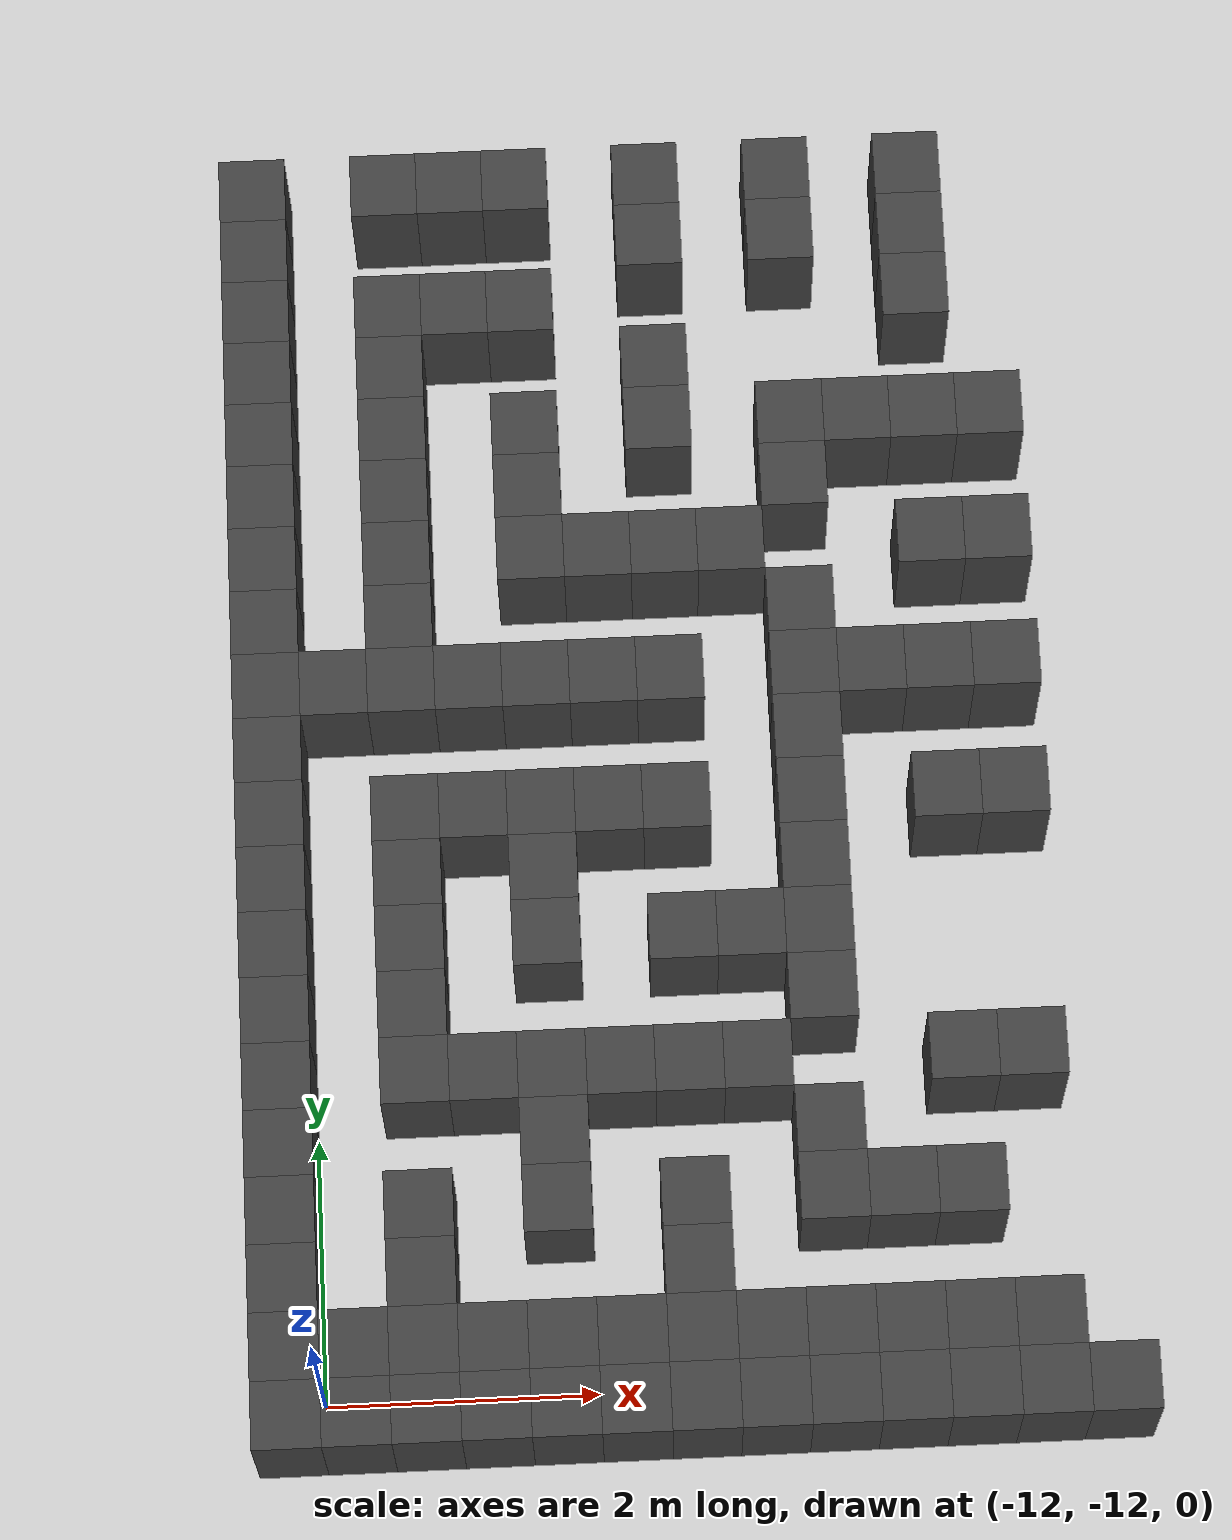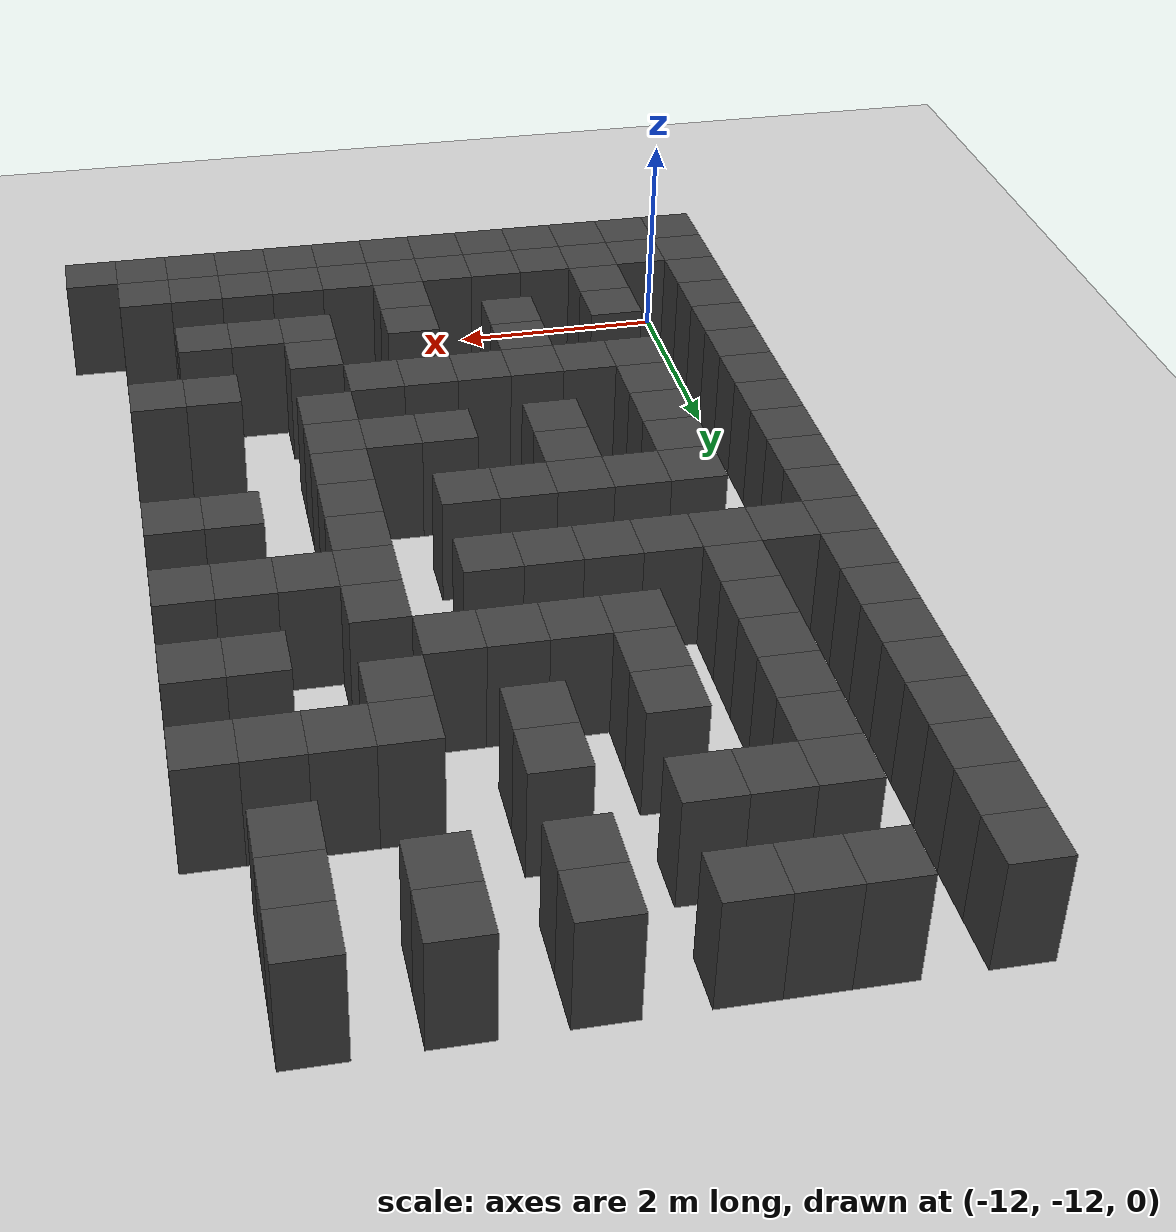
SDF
<sdf version="1.7">
 <world name="map_16603">
  <model name="ground_plane">
   <static>true</static>
   <link name="link">
    <collision name="collision">
     <geometry><plane><normal>0 0 1</normal><size>200 200</size></plane></geometry>
    </collision>
    <visual name="visual">
     <geometry><plane><normal>0 0 1</normal><size>200 200</size></plane></geometry>
     <material><ambient>0.8 0.8 0.8 1</ambient><diffuse>0.8 0.8 0.8 1</diffuse></material>
    </visual>
   </link>
  </model>
  <model name="maze_environment">
   <static>true</static>
   <link name="wall_730">
    <pose>-12.250 -2.750 0.500 0 0 0</pose>
    <collision name="col"><geometry><box><size>0.5 0.5 1.0</size></box></geometry></collision>
    <visual name="vis">
     <geometry><box><size>0.5 0.5 1.0</size></box></geometry>
     <material><ambient>0.15 0.15 0.15 1</ambient><diffuse>0.25 0.25 0.25 1</diffuse></material>
    </visual>
   </link>
   <link name="wall_731">
    <pose>-11.250 -2.750 0.500 0 0 0</pose>
    <collision name="col"><geometry><box><size>0.5 0.5 1.0</size></box></geometry></collision>
    <visual name="vis">
     <geometry><box><size>0.5 0.5 1.0</size></box></geometry>
     <material><ambient>0.15 0.15 0.15 1</ambient><diffuse>0.25 0.25 0.25 1</diffuse></material>
    </visual>
   </link>
   <link name="wall_732">
    <pose>-10.750 -2.750 0.500 0 0 0</pose>
    <collision name="col"><geometry><box><size>0.5 0.5 1.0</size></box></geometry></collision>
    <visual name="vis">
     <geometry><box><size>0.5 0.5 1.0</size></box></geometry>
     <material><ambient>0.15 0.15 0.15 1</ambient><diffuse>0.25 0.25 0.25 1</diffuse></material>
    </visual>
   </link>
   <link name="wall_733">
    <pose>-10.250 -2.750 0.500 0 0 0</pose>
    <collision name="col"><geometry><box><size>0.5 0.5 1.0</size></box></geometry></collision>
    <visual name="vis">
     <geometry><box><size>0.5 0.5 1.0</size></box></geometry>
     <material><ambient>0.15 0.15 0.15 1</ambient><diffuse>0.25 0.25 0.25 1</diffuse></material>
    </visual>
   </link>
   <link name="wall_734">
    <pose>-9.250 -2.750 0.500 0 0 0</pose>
    <collision name="col"><geometry><box><size>0.5 0.5 1.0</size></box></geometry></collision>
    <visual name="vis">
     <geometry><box><size>0.5 0.5 1.0</size></box></geometry>
     <material><ambient>0.15 0.15 0.15 1</ambient><diffuse>0.25 0.25 0.25 1</diffuse></material>
    </visual>
   </link>
   <link name="wall_735">
    <pose>-8.250 -2.750 0.500 0 0 0</pose>
    <collision name="col"><geometry><box><size>0.5 0.5 1.0</size></box></geometry></collision>
    <visual name="vis">
     <geometry><box><size>0.5 0.5 1.0</size></box></geometry>
     <material><ambient>0.15 0.15 0.15 1</ambient><diffuse>0.25 0.25 0.25 1</diffuse></material>
    </visual>
   </link>
   <link name="wall_736">
    <pose>-7.250 -2.750 0.500 0 0 0</pose>
    <collision name="col"><geometry><box><size>0.5 0.5 1.0</size></box></geometry></collision>
    <visual name="vis">
     <geometry><box><size>0.5 0.5 1.0</size></box></geometry>
     <material><ambient>0.15 0.15 0.15 1</ambient><diffuse>0.25 0.25 0.25 1</diffuse></material>
    </visual>
   </link>
   <link name="wall_765">
    <pose>-12.250 -3.250 0.500 0 0 0</pose>
    <collision name="col"><geometry><box><size>0.5 0.5 1.0</size></box></geometry></collision>
    <visual name="vis">
     <geometry><box><size>0.5 0.5 1.0</size></box></geometry>
     <material><ambient>0.15 0.15 0.15 1</ambient><diffuse>0.25 0.25 0.25 1</diffuse></material>
    </visual>
   </link>
   <link name="wall_766">
    <pose>-9.250 -3.250 0.500 0 0 0</pose>
    <collision name="col"><geometry><box><size>0.5 0.5 1.0</size></box></geometry></collision>
    <visual name="vis">
     <geometry><box><size>0.5 0.5 1.0</size></box></geometry>
     <material><ambient>0.15 0.15 0.15 1</ambient><diffuse>0.25 0.25 0.25 1</diffuse></material>
    </visual>
   </link>
   <link name="wall_767">
    <pose>-8.250 -3.250 0.500 0 0 0</pose>
    <collision name="col"><geometry><box><size>0.5 0.5 1.0</size></box></geometry></collision>
    <visual name="vis">
     <geometry><box><size>0.5 0.5 1.0</size></box></geometry>
     <material><ambient>0.15 0.15 0.15 1</ambient><diffuse>0.25 0.25 0.25 1</diffuse></material>
    </visual>
   </link>
   <link name="wall_768">
    <pose>-7.250 -3.250 0.500 0 0 0</pose>
    <collision name="col"><geometry><box><size>0.5 0.5 1.0</size></box></geometry></collision>
    <visual name="vis">
     <geometry><box><size>0.5 0.5 1.0</size></box></geometry>
     <material><ambient>0.15 0.15 0.15 1</ambient><diffuse>0.25 0.25 0.25 1</diffuse></material>
    </visual>
   </link>
   <link name="wall_778">
    <pose>-12.250 -3.750 0.500 0 0 0</pose>
    <collision name="col"><geometry><box><size>0.5 0.5 1.0</size></box></geometry></collision>
    <visual name="vis">
     <geometry><box><size>0.5 0.5 1.0</size></box></geometry>
     <material><ambient>0.15 0.15 0.15 1</ambient><diffuse>0.25 0.25 0.25 1</diffuse></material>
    </visual>
   </link>
   <link name="wall_779">
    <pose>-11.250 -3.750 0.500 0 0 0</pose>
    <collision name="col"><geometry><box><size>0.5 0.5 1.0</size></box></geometry></collision>
    <visual name="vis">
     <geometry><box><size>0.5 0.5 1.0</size></box></geometry>
     <material><ambient>0.15 0.15 0.15 1</ambient><diffuse>0.25 0.25 0.25 1</diffuse></material>
    </visual>
   </link>
   <link name="wall_780">
    <pose>-10.750 -3.750 0.500 0 0 0</pose>
    <collision name="col"><geometry><box><size>0.5 0.5 1.0</size></box></geometry></collision>
    <visual name="vis">
     <geometry><box><size>0.5 0.5 1.0</size></box></geometry>
     <material><ambient>0.15 0.15 0.15 1</ambient><diffuse>0.25 0.25 0.25 1</diffuse></material>
    </visual>
   </link>
   <link name="wall_781">
    <pose>-10.250 -3.750 0.500 0 0 0</pose>
    <collision name="col"><geometry><box><size>0.5 0.5 1.0</size></box></geometry></collision>
    <visual name="vis">
     <geometry><box><size>0.5 0.5 1.0</size></box></geometry>
     <material><ambient>0.15 0.15 0.15 1</ambient><diffuse>0.25 0.25 0.25 1</diffuse></material>
    </visual>
   </link>
   <link name="wall_782">
    <pose>-7.250 -3.750 0.500 0 0 0</pose>
    <collision name="col"><geometry><box><size>0.5 0.5 1.0</size></box></geometry></collision>
    <visual name="vis">
     <geometry><box><size>0.5 0.5 1.0</size></box></geometry>
     <material><ambient>0.15 0.15 0.15 1</ambient><diffuse>0.25 0.25 0.25 1</diffuse></material>
    </visual>
   </link>
   <link name="wall_812">
    <pose>-12.250 -4.250 0.500 0 0 0</pose>
    <collision name="col"><geometry><box><size>0.5 0.5 1.0</size></box></geometry></collision>
    <visual name="vis">
     <geometry><box><size>0.5 0.5 1.0</size></box></geometry>
     <material><ambient>0.15 0.15 0.15 1</ambient><diffuse>0.25 0.25 0.25 1</diffuse></material>
    </visual>
   </link>
   <link name="wall_813">
    <pose>-11.250 -4.250 0.500 0 0 0</pose>
    <collision name="col"><geometry><box><size>0.5 0.5 1.0</size></box></geometry></collision>
    <visual name="vis">
     <geometry><box><size>0.5 0.5 1.0</size></box></geometry>
     <material><ambient>0.15 0.15 0.15 1</ambient><diffuse>0.25 0.25 0.25 1</diffuse></material>
    </visual>
   </link>
   <link name="wall_814">
    <pose>-9.250 -4.250 0.500 0 0 0</pose>
    <collision name="col"><geometry><box><size>0.5 0.5 1.0</size></box></geometry></collision>
    <visual name="vis">
     <geometry><box><size>0.5 0.5 1.0</size></box></geometry>
     <material><ambient>0.15 0.15 0.15 1</ambient><diffuse>0.25 0.25 0.25 1</diffuse></material>
    </visual>
   </link>
   <link name="wall_826">
    <pose>-12.250 -4.750 0.500 0 0 0</pose>
    <collision name="col"><geometry><box><size>0.5 0.5 1.0</size></box></geometry></collision>
    <visual name="vis">
     <geometry><box><size>0.5 0.5 1.0</size></box></geometry>
     <material><ambient>0.15 0.15 0.15 1</ambient><diffuse>0.25 0.25 0.25 1</diffuse></material>
    </visual>
   </link>
   <link name="wall_827">
    <pose>-11.250 -4.750 0.500 0 0 0</pose>
    <collision name="col"><geometry><box><size>0.5 0.5 1.0</size></box></geometry></collision>
    <visual name="vis">
     <geometry><box><size>0.5 0.5 1.0</size></box></geometry>
     <material><ambient>0.15 0.15 0.15 1</ambient><diffuse>0.25 0.25 0.25 1</diffuse></material>
    </visual>
   </link>
   <link name="wall_828">
    <pose>-10.250 -4.750 0.500 0 0 0</pose>
    <collision name="col"><geometry><box><size>0.5 0.5 1.0</size></box></geometry></collision>
    <visual name="vis">
     <geometry><box><size>0.5 0.5 1.0</size></box></geometry>
     <material><ambient>0.15 0.15 0.15 1</ambient><diffuse>0.25 0.25 0.25 1</diffuse></material>
    </visual>
   </link>
   <link name="wall_829">
    <pose>-9.250 -4.750 0.500 0 0 0</pose>
    <collision name="col"><geometry><box><size>0.5 0.5 1.0</size></box></geometry></collision>
    <visual name="vis">
     <geometry><box><size>0.5 0.5 1.0</size></box></geometry>
     <material><ambient>0.15 0.15 0.15 1</ambient><diffuse>0.25 0.25 0.25 1</diffuse></material>
    </visual>
   </link>
   <link name="wall_830">
    <pose>-8.250 -4.750 0.500 0 0 0</pose>
    <collision name="col"><geometry><box><size>0.5 0.5 1.0</size></box></geometry></collision>
    <visual name="vis">
     <geometry><box><size>0.5 0.5 1.0</size></box></geometry>
     <material><ambient>0.15 0.15 0.15 1</ambient><diffuse>0.25 0.25 0.25 1</diffuse></material>
    </visual>
   </link>
   <link name="wall_831">
    <pose>-7.750 -4.750 0.500 0 0 0</pose>
    <collision name="col"><geometry><box><size>0.5 0.5 1.0</size></box></geometry></collision>
    <visual name="vis">
     <geometry><box><size>0.5 0.5 1.0</size></box></geometry>
     <material><ambient>0.15 0.15 0.15 1</ambient><diffuse>0.25 0.25 0.25 1</diffuse></material>
    </visual>
   </link>
   <link name="wall_832">
    <pose>-7.250 -4.750 0.500 0 0 0</pose>
    <collision name="col"><geometry><box><size>0.5 0.5 1.0</size></box></geometry></collision>
    <visual name="vis">
     <geometry><box><size>0.5 0.5 1.0</size></box></geometry>
     <material><ambient>0.15 0.15 0.15 1</ambient><diffuse>0.25 0.25 0.25 1</diffuse></material>
    </visual>
   </link>
   <link name="wall_833">
    <pose>-6.750 -4.750 0.500 0 0 0</pose>
    <collision name="col"><geometry><box><size>0.5 0.5 1.0</size></box></geometry></collision>
    <visual name="vis">
     <geometry><box><size>0.5 0.5 1.0</size></box></geometry>
     <material><ambient>0.15 0.15 0.15 1</ambient><diffuse>0.25 0.25 0.25 1</diffuse></material>
    </visual>
   </link>
   <link name="wall_857">
    <pose>-12.250 -5.250 0.500 0 0 0</pose>
    <collision name="col"><geometry><box><size>0.5 0.5 1.0</size></box></geometry></collision>
    <visual name="vis">
     <geometry><box><size>0.5 0.5 1.0</size></box></geometry>
     <material><ambient>0.15 0.15 0.15 1</ambient><diffuse>0.25 0.25 0.25 1</diffuse></material>
    </visual>
   </link>
   <link name="wall_858">
    <pose>-11.250 -5.250 0.500 0 0 0</pose>
    <collision name="col"><geometry><box><size>0.5 0.5 1.0</size></box></geometry></collision>
    <visual name="vis">
     <geometry><box><size>0.5 0.5 1.0</size></box></geometry>
     <material><ambient>0.15 0.15 0.15 1</ambient><diffuse>0.25 0.25 0.25 1</diffuse></material>
    </visual>
   </link>
   <link name="wall_859">
    <pose>-10.250 -5.250 0.500 0 0 0</pose>
    <collision name="col"><geometry><box><size>0.5 0.5 1.0</size></box></geometry></collision>
    <visual name="vis">
     <geometry><box><size>0.5 0.5 1.0</size></box></geometry>
     <material><ambient>0.15 0.15 0.15 1</ambient><diffuse>0.25 0.25 0.25 1</diffuse></material>
    </visual>
   </link>
   <link name="wall_860">
    <pose>-8.250 -5.250 0.500 0 0 0</pose>
    <collision name="col"><geometry><box><size>0.5 0.5 1.0</size></box></geometry></collision>
    <visual name="vis">
     <geometry><box><size>0.5 0.5 1.0</size></box></geometry>
     <material><ambient>0.15 0.15 0.15 1</ambient><diffuse>0.25 0.25 0.25 1</diffuse></material>
    </visual>
   </link>
   <link name="wall_871">
    <pose>-12.250 -5.750 0.500 0 0 0</pose>
    <collision name="col"><geometry><box><size>0.5 0.5 1.0</size></box></geometry></collision>
    <visual name="vis">
     <geometry><box><size>0.5 0.5 1.0</size></box></geometry>
     <material><ambient>0.15 0.15 0.15 1</ambient><diffuse>0.25 0.25 0.25 1</diffuse></material>
    </visual>
   </link>
   <link name="wall_872">
    <pose>-11.250 -5.750 0.500 0 0 0</pose>
    <collision name="col"><geometry><box><size>0.5 0.5 1.0</size></box></geometry></collision>
    <visual name="vis">
     <geometry><box><size>0.5 0.5 1.0</size></box></geometry>
     <material><ambient>0.15 0.15 0.15 1</ambient><diffuse>0.25 0.25 0.25 1</diffuse></material>
    </visual>
   </link>
   <link name="wall_873">
    <pose>-10.250 -5.750 0.500 0 0 0</pose>
    <collision name="col"><geometry><box><size>0.5 0.5 1.0</size></box></geometry></collision>
    <visual name="vis">
     <geometry><box><size>0.5 0.5 1.0</size></box></geometry>
     <material><ambient>0.15 0.15 0.15 1</ambient><diffuse>0.25 0.25 0.25 1</diffuse></material>
    </visual>
   </link>
   <link name="wall_874">
    <pose>-9.750 -5.750 0.500 0 0 0</pose>
    <collision name="col"><geometry><box><size>0.5 0.5 1.0</size></box></geometry></collision>
    <visual name="vis">
     <geometry><box><size>0.5 0.5 1.0</size></box></geometry>
     <material><ambient>0.15 0.15 0.15 1</ambient><diffuse>0.25 0.25 0.25 1</diffuse></material>
    </visual>
   </link>
   <link name="wall_875">
    <pose>-9.250 -5.750 0.500 0 0 0</pose>
    <collision name="col"><geometry><box><size>0.5 0.5 1.0</size></box></geometry></collision>
    <visual name="vis">
     <geometry><box><size>0.5 0.5 1.0</size></box></geometry>
     <material><ambient>0.15 0.15 0.15 1</ambient><diffuse>0.25 0.25 0.25 1</diffuse></material>
    </visual>
   </link>
   <link name="wall_876">
    <pose>-8.750 -5.750 0.500 0 0 0</pose>
    <collision name="col"><geometry><box><size>0.5 0.5 1.0</size></box></geometry></collision>
    <visual name="vis">
     <geometry><box><size>0.5 0.5 1.0</size></box></geometry>
     <material><ambient>0.15 0.15 0.15 1</ambient><diffuse>0.25 0.25 0.25 1</diffuse></material>
    </visual>
   </link>
   <link name="wall_877">
    <pose>-7.250 -5.750 0.500 0 0 0</pose>
    <collision name="col"><geometry><box><size>0.5 0.5 1.0</size></box></geometry></collision>
    <visual name="vis">
     <geometry><box><size>0.5 0.5 1.0</size></box></geometry>
     <material><ambient>0.15 0.15 0.15 1</ambient><diffuse>0.25 0.25 0.25 1</diffuse></material>
    </visual>
   </link>
   <link name="wall_878">
    <pose>-6.750 -5.750 0.500 0 0 0</pose>
    <collision name="col"><geometry><box><size>0.5 0.5 1.0</size></box></geometry></collision>
    <visual name="vis">
     <geometry><box><size>0.5 0.5 1.0</size></box></geometry>
     <material><ambient>0.15 0.15 0.15 1</ambient><diffuse>0.25 0.25 0.25 1</diffuse></material>
    </visual>
   </link>
   <link name="wall_907">
    <pose>-12.250 -6.250 0.500 0 0 0</pose>
    <collision name="col"><geometry><box><size>0.5 0.5 1.0</size></box></geometry></collision>
    <visual name="vis">
     <geometry><box><size>0.5 0.5 1.0</size></box></geometry>
     <material><ambient>0.15 0.15 0.15 1</ambient><diffuse>0.25 0.25 0.25 1</diffuse></material>
    </visual>
   </link>
   <link name="wall_908">
    <pose>-11.250 -6.250 0.500 0 0 0</pose>
    <collision name="col"><geometry><box><size>0.5 0.5 1.0</size></box></geometry></collision>
    <visual name="vis">
     <geometry><box><size>0.5 0.5 1.0</size></box></geometry>
     <material><ambient>0.15 0.15 0.15 1</ambient><diffuse>0.25 0.25 0.25 1</diffuse></material>
    </visual>
   </link>
   <link name="wall_909">
    <pose>-8.250 -6.250 0.500 0 0 0</pose>
    <collision name="col"><geometry><box><size>0.5 0.5 1.0</size></box></geometry></collision>
    <visual name="vis">
     <geometry><box><size>0.5 0.5 1.0</size></box></geometry>
     <material><ambient>0.15 0.15 0.15 1</ambient><diffuse>0.25 0.25 0.25 1</diffuse></material>
    </visual>
   </link>
   <link name="wall_920">
    <pose>-12.250 -6.750 0.500 0 0 0</pose>
    <collision name="col"><geometry><box><size>0.5 0.5 1.0</size></box></geometry></collision>
    <visual name="vis">
     <geometry><box><size>0.5 0.5 1.0</size></box></geometry>
     <material><ambient>0.15 0.15 0.15 1</ambient><diffuse>0.25 0.25 0.25 1</diffuse></material>
    </visual>
   </link>
   <link name="wall_921">
    <pose>-11.750 -6.750 0.500 0 0 0</pose>
    <collision name="col"><geometry><box><size>0.5 0.5 1.0</size></box></geometry></collision>
    <visual name="vis">
     <geometry><box><size>0.5 0.5 1.0</size></box></geometry>
     <material><ambient>0.15 0.15 0.15 1</ambient><diffuse>0.25 0.25 0.25 1</diffuse></material>
    </visual>
   </link>
   <link name="wall_922">
    <pose>-11.250 -6.750 0.500 0 0 0</pose>
    <collision name="col"><geometry><box><size>0.5 0.5 1.0</size></box></geometry></collision>
    <visual name="vis">
     <geometry><box><size>0.5 0.5 1.0</size></box></geometry>
     <material><ambient>0.15 0.15 0.15 1</ambient><diffuse>0.25 0.25 0.25 1</diffuse></material>
    </visual>
   </link>
   <link name="wall_923">
    <pose>-10.750 -6.750 0.500 0 0 0</pose>
    <collision name="col"><geometry><box><size>0.5 0.5 1.0</size></box></geometry></collision>
    <visual name="vis">
     <geometry><box><size>0.5 0.5 1.0</size></box></geometry>
     <material><ambient>0.15 0.15 0.15 1</ambient><diffuse>0.25 0.25 0.25 1</diffuse></material>
    </visual>
   </link>
   <link name="wall_924">
    <pose>-10.250 -6.750 0.500 0 0 0</pose>
    <collision name="col"><geometry><box><size>0.5 0.5 1.0</size></box></geometry></collision>
    <visual name="vis">
     <geometry><box><size>0.5 0.5 1.0</size></box></geometry>
     <material><ambient>0.15 0.15 0.15 1</ambient><diffuse>0.25 0.25 0.25 1</diffuse></material>
    </visual>
   </link>
   <link name="wall_925">
    <pose>-9.750 -6.750 0.500 0 0 0</pose>
    <collision name="col"><geometry><box><size>0.5 0.5 1.0</size></box></geometry></collision>
    <visual name="vis">
     <geometry><box><size>0.5 0.5 1.0</size></box></geometry>
     <material><ambient>0.15 0.15 0.15 1</ambient><diffuse>0.25 0.25 0.25 1</diffuse></material>
    </visual>
   </link>
   <link name="wall_926">
    <pose>-9.250 -6.750 0.500 0 0 0</pose>
    <collision name="col"><geometry><box><size>0.5 0.5 1.0</size></box></geometry></collision>
    <visual name="vis">
     <geometry><box><size>0.5 0.5 1.0</size></box></geometry>
     <material><ambient>0.15 0.15 0.15 1</ambient><diffuse>0.25 0.25 0.25 1</diffuse></material>
    </visual>
   </link>
   <link name="wall_927">
    <pose>-8.250 -6.750 0.500 0 0 0</pose>
    <collision name="col"><geometry><box><size>0.5 0.5 1.0</size></box></geometry></collision>
    <visual name="vis">
     <geometry><box><size>0.5 0.5 1.0</size></box></geometry>
     <material><ambient>0.15 0.15 0.15 1</ambient><diffuse>0.25 0.25 0.25 1</diffuse></material>
    </visual>
   </link>
   <link name="wall_928">
    <pose>-7.750 -6.750 0.500 0 0 0</pose>
    <collision name="col"><geometry><box><size>0.5 0.5 1.0</size></box></geometry></collision>
    <visual name="vis">
     <geometry><box><size>0.5 0.5 1.0</size></box></geometry>
     <material><ambient>0.15 0.15 0.15 1</ambient><diffuse>0.25 0.25 0.25 1</diffuse></material>
    </visual>
   </link>
   <link name="wall_929">
    <pose>-7.250 -6.750 0.500 0 0 0</pose>
    <collision name="col"><geometry><box><size>0.5 0.5 1.0</size></box></geometry></collision>
    <visual name="vis">
     <geometry><box><size>0.5 0.5 1.0</size></box></geometry>
     <material><ambient>0.15 0.15 0.15 1</ambient><diffuse>0.25 0.25 0.25 1</diffuse></material>
    </visual>
   </link>
   <link name="wall_930">
    <pose>-6.750 -6.750 0.500 0 0 0</pose>
    <collision name="col"><geometry><box><size>0.5 0.5 1.0</size></box></geometry></collision>
    <visual name="vis">
     <geometry><box><size>0.5 0.5 1.0</size></box></geometry>
     <material><ambient>0.15 0.15 0.15 1</ambient><diffuse>0.25 0.25 0.25 1</diffuse></material>
    </visual>
   </link>
   <link name="wall_958">
    <pose>-12.250 -7.250 0.500 0 0 0</pose>
    <collision name="col"><geometry><box><size>0.5 0.5 1.0</size></box></geometry></collision>
    <visual name="vis">
     <geometry><box><size>0.5 0.5 1.0</size></box></geometry>
     <material><ambient>0.15 0.15 0.15 1</ambient><diffuse>0.25 0.25 0.25 1</diffuse></material>
    </visual>
   </link>
   <link name="wall_959">
    <pose>-8.250 -7.250 0.500 0 0 0</pose>
    <collision name="col"><geometry><box><size>0.5 0.5 1.0</size></box></geometry></collision>
    <visual name="vis">
     <geometry><box><size>0.5 0.5 1.0</size></box></geometry>
     <material><ambient>0.15 0.15 0.15 1</ambient><diffuse>0.25 0.25 0.25 1</diffuse></material>
    </visual>
   </link>
   <link name="wall_968">
    <pose>-12.250 -7.750 0.500 0 0 0</pose>
    <collision name="col"><geometry><box><size>0.5 0.5 1.0</size></box></geometry></collision>
    <visual name="vis">
     <geometry><box><size>0.5 0.5 1.0</size></box></geometry>
     <material><ambient>0.15 0.15 0.15 1</ambient><diffuse>0.25 0.25 0.25 1</diffuse></material>
    </visual>
   </link>
   <link name="wall_969">
    <pose>-11.250 -7.750 0.500 0 0 0</pose>
    <collision name="col"><geometry><box><size>0.5 0.5 1.0</size></box></geometry></collision>
    <visual name="vis">
     <geometry><box><size>0.5 0.5 1.0</size></box></geometry>
     <material><ambient>0.15 0.15 0.15 1</ambient><diffuse>0.25 0.25 0.25 1</diffuse></material>
    </visual>
   </link>
   <link name="wall_970">
    <pose>-10.750 -7.750 0.500 0 0 0</pose>
    <collision name="col"><geometry><box><size>0.5 0.5 1.0</size></box></geometry></collision>
    <visual name="vis">
     <geometry><box><size>0.5 0.5 1.0</size></box></geometry>
     <material><ambient>0.15 0.15 0.15 1</ambient><diffuse>0.25 0.25 0.25 1</diffuse></material>
    </visual>
   </link>
   <link name="wall_971">
    <pose>-10.250 -7.750 0.500 0 0 0</pose>
    <collision name="col"><geometry><box><size>0.5 0.5 1.0</size></box></geometry></collision>
    <visual name="vis">
     <geometry><box><size>0.5 0.5 1.0</size></box></geometry>
     <material><ambient>0.15 0.15 0.15 1</ambient><diffuse>0.25 0.25 0.25 1</diffuse></material>
    </visual>
   </link>
   <link name="wall_972">
    <pose>-9.750 -7.750 0.500 0 0 0</pose>
    <collision name="col"><geometry><box><size>0.5 0.5 1.0</size></box></geometry></collision>
    <visual name="vis">
     <geometry><box><size>0.5 0.5 1.0</size></box></geometry>
     <material><ambient>0.15 0.15 0.15 1</ambient><diffuse>0.25 0.25 0.25 1</diffuse></material>
    </visual>
   </link>
   <link name="wall_973">
    <pose>-9.250 -7.750 0.500 0 0 0</pose>
    <collision name="col"><geometry><box><size>0.5 0.5 1.0</size></box></geometry></collision>
    <visual name="vis">
     <geometry><box><size>0.5 0.5 1.0</size></box></geometry>
     <material><ambient>0.15 0.15 0.15 1</ambient><diffuse>0.25 0.25 0.25 1</diffuse></material>
    </visual>
   </link>
   <link name="wall_974">
    <pose>-8.250 -7.750 0.500 0 0 0</pose>
    <collision name="col"><geometry><box><size>0.5 0.5 1.0</size></box></geometry></collision>
    <visual name="vis">
     <geometry><box><size>0.5 0.5 1.0</size></box></geometry>
     <material><ambient>0.15 0.15 0.15 1</ambient><diffuse>0.25 0.25 0.25 1</diffuse></material>
    </visual>
   </link>
   <link name="wall_975">
    <pose>-7.250 -7.750 0.500 0 0 0</pose>
    <collision name="col"><geometry><box><size>0.5 0.5 1.0</size></box></geometry></collision>
    <visual name="vis">
     <geometry><box><size>0.5 0.5 1.0</size></box></geometry>
     <material><ambient>0.15 0.15 0.15 1</ambient><diffuse>0.25 0.25 0.25 1</diffuse></material>
    </visual>
   </link>
   <link name="wall_976">
    <pose>-6.750 -7.750 0.500 0 0 0</pose>
    <collision name="col"><geometry><box><size>0.5 0.5 1.0</size></box></geometry></collision>
    <visual name="vis">
     <geometry><box><size>0.5 0.5 1.0</size></box></geometry>
     <material><ambient>0.15 0.15 0.15 1</ambient><diffuse>0.25 0.25 0.25 1</diffuse></material>
    </visual>
   </link>
   <link name="wall_1001">
    <pose>-12.250 -8.250 0.500 0 0 0</pose>
    <collision name="col"><geometry><box><size>0.5 0.5 1.0</size></box></geometry></collision>
    <visual name="vis">
     <geometry><box><size>0.5 0.5 1.0</size></box></geometry>
     <material><ambient>0.15 0.15 0.15 1</ambient><diffuse>0.25 0.25 0.25 1</diffuse></material>
    </visual>
   </link>
   <link name="wall_1002">
    <pose>-11.250 -8.250 0.500 0 0 0</pose>
    <collision name="col"><geometry><box><size>0.5 0.5 1.0</size></box></geometry></collision>
    <visual name="vis">
     <geometry><box><size>0.5 0.5 1.0</size></box></geometry>
     <material><ambient>0.15 0.15 0.15 1</ambient><diffuse>0.25 0.25 0.25 1</diffuse></material>
    </visual>
   </link>
   <link name="wall_1003">
    <pose>-10.250 -8.250 0.500 0 0 0</pose>
    <collision name="col"><geometry><box><size>0.5 0.5 1.0</size></box></geometry></collision>
    <visual name="vis">
     <geometry><box><size>0.5 0.5 1.0</size></box></geometry>
     <material><ambient>0.15 0.15 0.15 1</ambient><diffuse>0.25 0.25 0.25 1</diffuse></material>
    </visual>
   </link>
   <link name="wall_1004">
    <pose>-8.250 -8.250 0.500 0 0 0</pose>
    <collision name="col"><geometry><box><size>0.5 0.5 1.0</size></box></geometry></collision>
    <visual name="vis">
     <geometry><box><size>0.5 0.5 1.0</size></box></geometry>
     <material><ambient>0.15 0.15 0.15 1</ambient><diffuse>0.25 0.25 0.25 1</diffuse></material>
    </visual>
   </link>
   <link name="wall_1014">
    <pose>-12.250 -8.750 0.500 0 0 0</pose>
    <collision name="col"><geometry><box><size>0.5 0.5 1.0</size></box></geometry></collision>
    <visual name="vis">
     <geometry><box><size>0.5 0.5 1.0</size></box></geometry>
     <material><ambient>0.15 0.15 0.15 1</ambient><diffuse>0.25 0.25 0.25 1</diffuse></material>
    </visual>
   </link>
   <link name="wall_1015">
    <pose>-11.250 -8.750 0.500 0 0 0</pose>
    <collision name="col"><geometry><box><size>0.5 0.5 1.0</size></box></geometry></collision>
    <visual name="vis">
     <geometry><box><size>0.5 0.5 1.0</size></box></geometry>
     <material><ambient>0.15 0.15 0.15 1</ambient><diffuse>0.25 0.25 0.25 1</diffuse></material>
    </visual>
   </link>
   <link name="wall_1016">
    <pose>-10.250 -8.750 0.500 0 0 0</pose>
    <collision name="col"><geometry><box><size>0.5 0.5 1.0</size></box></geometry></collision>
    <visual name="vis">
     <geometry><box><size>0.5 0.5 1.0</size></box></geometry>
     <material><ambient>0.15 0.15 0.15 1</ambient><diffuse>0.25 0.25 0.25 1</diffuse></material>
    </visual>
   </link>
   <link name="wall_1017">
    <pose>-9.250 -8.750 0.500 0 0 0</pose>
    <collision name="col"><geometry><box><size>0.5 0.5 1.0</size></box></geometry></collision>
    <visual name="vis">
     <geometry><box><size>0.5 0.5 1.0</size></box></geometry>
     <material><ambient>0.15 0.15 0.15 1</ambient><diffuse>0.25 0.25 0.25 1</diffuse></material>
    </visual>
   </link>
   <link name="wall_1018">
    <pose>-8.750 -8.750 0.500 0 0 0</pose>
    <collision name="col"><geometry><box><size>0.5 0.5 1.0</size></box></geometry></collision>
    <visual name="vis">
     <geometry><box><size>0.5 0.5 1.0</size></box></geometry>
     <material><ambient>0.15 0.15 0.15 1</ambient><diffuse>0.25 0.25 0.25 1</diffuse></material>
    </visual>
   </link>
   <link name="wall_1019">
    <pose>-8.250 -8.750 0.500 0 0 0</pose>
    <collision name="col"><geometry><box><size>0.5 0.5 1.0</size></box></geometry></collision>
    <visual name="vis">
     <geometry><box><size>0.5 0.5 1.0</size></box></geometry>
     <material><ambient>0.15 0.15 0.15 1</ambient><diffuse>0.25 0.25 0.25 1</diffuse></material>
    </visual>
   </link>
   <link name="wall_1047">
    <pose>-12.250 -9.250 0.500 0 0 0</pose>
    <collision name="col"><geometry><box><size>0.5 0.5 1.0</size></box></geometry></collision>
    <visual name="vis">
     <geometry><box><size>0.5 0.5 1.0</size></box></geometry>
     <material><ambient>0.15 0.15 0.15 1</ambient><diffuse>0.25 0.25 0.25 1</diffuse></material>
    </visual>
   </link>
   <link name="wall_1048">
    <pose>-11.250 -9.250 0.500 0 0 0</pose>
    <collision name="col"><geometry><box><size>0.5 0.5 1.0</size></box></geometry></collision>
    <visual name="vis">
     <geometry><box><size>0.5 0.5 1.0</size></box></geometry>
     <material><ambient>0.15 0.15 0.15 1</ambient><diffuse>0.25 0.25 0.25 1</diffuse></material>
    </visual>
   </link>
   <link name="wall_1049">
    <pose>-8.250 -9.250 0.500 0 0 0</pose>
    <collision name="col"><geometry><box><size>0.5 0.5 1.0</size></box></geometry></collision>
    <visual name="vis">
     <geometry><box><size>0.5 0.5 1.0</size></box></geometry>
     <material><ambient>0.15 0.15 0.15 1</ambient><diffuse>0.25 0.25 0.25 1</diffuse></material>
    </visual>
   </link>
   <link name="wall_1063">
    <pose>-12.250 -9.750 0.500 0 0 0</pose>
    <collision name="col"><geometry><box><size>0.5 0.5 1.0</size></box></geometry></collision>
    <visual name="vis">
     <geometry><box><size>0.5 0.5 1.0</size></box></geometry>
     <material><ambient>0.15 0.15 0.15 1</ambient><diffuse>0.25 0.25 0.25 1</diffuse></material>
    </visual>
   </link>
   <link name="wall_1064">
    <pose>-11.250 -9.750 0.500 0 0 0</pose>
    <collision name="col"><geometry><box><size>0.5 0.5 1.0</size></box></geometry></collision>
    <visual name="vis">
     <geometry><box><size>0.5 0.5 1.0</size></box></geometry>
     <material><ambient>0.15 0.15 0.15 1</ambient><diffuse>0.25 0.25 0.25 1</diffuse></material>
    </visual>
   </link>
   <link name="wall_1065">
    <pose>-10.750 -9.750 0.500 0 0 0</pose>
    <collision name="col"><geometry><box><size>0.5 0.5 1.0</size></box></geometry></collision>
    <visual name="vis">
     <geometry><box><size>0.5 0.5 1.0</size></box></geometry>
     <material><ambient>0.15 0.15 0.15 1</ambient><diffuse>0.25 0.25 0.25 1</diffuse></material>
    </visual>
   </link>
   <link name="wall_1066">
    <pose>-10.250 -9.750 0.500 0 0 0</pose>
    <collision name="col"><geometry><box><size>0.5 0.5 1.0</size></box></geometry></collision>
    <visual name="vis">
     <geometry><box><size>0.5 0.5 1.0</size></box></geometry>
     <material><ambient>0.15 0.15 0.15 1</ambient><diffuse>0.25 0.25 0.25 1</diffuse></material>
    </visual>
   </link>
   <link name="wall_1067">
    <pose>-9.750 -9.750 0.500 0 0 0</pose>
    <collision name="col"><geometry><box><size>0.5 0.5 1.0</size></box></geometry></collision>
    <visual name="vis">
     <geometry><box><size>0.5 0.5 1.0</size></box></geometry>
     <material><ambient>0.15 0.15 0.15 1</ambient><diffuse>0.25 0.25 0.25 1</diffuse></material>
    </visual>
   </link>
   <link name="wall_1068">
    <pose>-9.250 -9.750 0.500 0 0 0</pose>
    <collision name="col"><geometry><box><size>0.5 0.5 1.0</size></box></geometry></collision>
    <visual name="vis">
     <geometry><box><size>0.5 0.5 1.0</size></box></geometry>
     <material><ambient>0.15 0.15 0.15 1</ambient><diffuse>0.25 0.25 0.25 1</diffuse></material>
    </visual>
   </link>
   <link name="wall_1069">
    <pose>-8.750 -9.750 0.500 0 0 0</pose>
    <collision name="col"><geometry><box><size>0.5 0.5 1.0</size></box></geometry></collision>
    <visual name="vis">
     <geometry><box><size>0.5 0.5 1.0</size></box></geometry>
     <material><ambient>0.15 0.15 0.15 1</ambient><diffuse>0.25 0.25 0.25 1</diffuse></material>
    </visual>
   </link>
   <link name="wall_1070">
    <pose>-7.250 -9.750 0.500 0 0 0</pose>
    <collision name="col"><geometry><box><size>0.5 0.5 1.0</size></box></geometry></collision>
    <visual name="vis">
     <geometry><box><size>0.5 0.5 1.0</size></box></geometry>
     <material><ambient>0.15 0.15 0.15 1</ambient><diffuse>0.25 0.25 0.25 1</diffuse></material>
    </visual>
   </link>
   <link name="wall_1071">
    <pose>-6.750 -9.750 0.500 0 0 0</pose>
    <collision name="col"><geometry><box><size>0.5 0.5 1.0</size></box></geometry></collision>
    <visual name="vis">
     <geometry><box><size>0.5 0.5 1.0</size></box></geometry>
     <material><ambient>0.15 0.15 0.15 1</ambient><diffuse>0.25 0.25 0.25 1</diffuse></material>
    </visual>
   </link>
   <link name="wall_1092">
    <pose>-12.250 -10.250 0.500 0 0 0</pose>
    <collision name="col"><geometry><box><size>0.5 0.5 1.0</size></box></geometry></collision>
    <visual name="vis">
     <geometry><box><size>0.5 0.5 1.0</size></box></geometry>
     <material><ambient>0.15 0.15 0.15 1</ambient><diffuse>0.25 0.25 0.25 1</diffuse></material>
    </visual>
   </link>
   <link name="wall_1093">
    <pose>-10.250 -10.250 0.500 0 0 0</pose>
    <collision name="col"><geometry><box><size>0.5 0.5 1.0</size></box></geometry></collision>
    <visual name="vis">
     <geometry><box><size>0.5 0.5 1.0</size></box></geometry>
     <material><ambient>0.15 0.15 0.15 1</ambient><diffuse>0.25 0.25 0.25 1</diffuse></material>
    </visual>
   </link>
   <link name="wall_1094">
    <pose>-8.250 -10.250 0.500 0 0 0</pose>
    <collision name="col"><geometry><box><size>0.5 0.5 1.0</size></box></geometry></collision>
    <visual name="vis">
     <geometry><box><size>0.5 0.5 1.0</size></box></geometry>
     <material><ambient>0.15 0.15 0.15 1</ambient><diffuse>0.25 0.25 0.25 1</diffuse></material>
    </visual>
   </link>
   <link name="wall_1106">
    <pose>-12.250 -10.750 0.500 0 0 0</pose>
    <collision name="col"><geometry><box><size>0.5 0.5 1.0</size></box></geometry></collision>
    <visual name="vis">
     <geometry><box><size>0.5 0.5 1.0</size></box></geometry>
     <material><ambient>0.15 0.15 0.15 1</ambient><diffuse>0.25 0.25 0.25 1</diffuse></material>
    </visual>
   </link>
   <link name="wall_1107">
    <pose>-11.250 -10.750 0.500 0 0 0</pose>
    <collision name="col"><geometry><box><size>0.5 0.5 1.0</size></box></geometry></collision>
    <visual name="vis">
     <geometry><box><size>0.5 0.5 1.0</size></box></geometry>
     <material><ambient>0.15 0.15 0.15 1</ambient><diffuse>0.25 0.25 0.25 1</diffuse></material>
    </visual>
   </link>
   <link name="wall_1108">
    <pose>-10.250 -10.750 0.500 0 0 0</pose>
    <collision name="col"><geometry><box><size>0.5 0.5 1.0</size></box></geometry></collision>
    <visual name="vis">
     <geometry><box><size>0.5 0.5 1.0</size></box></geometry>
     <material><ambient>0.15 0.15 0.15 1</ambient><diffuse>0.25 0.25 0.25 1</diffuse></material>
    </visual>
   </link>
   <link name="wall_1109">
    <pose>-9.250 -10.750 0.500 0 0 0</pose>
    <collision name="col"><geometry><box><size>0.5 0.5 1.0</size></box></geometry></collision>
    <visual name="vis">
     <geometry><box><size>0.5 0.5 1.0</size></box></geometry>
     <material><ambient>0.15 0.15 0.15 1</ambient><diffuse>0.25 0.25 0.25 1</diffuse></material>
    </visual>
   </link>
   <link name="wall_1110">
    <pose>-8.250 -10.750 0.500 0 0 0</pose>
    <collision name="col"><geometry><box><size>0.5 0.5 1.0</size></box></geometry></collision>
    <visual name="vis">
     <geometry><box><size>0.5 0.5 1.0</size></box></geometry>
     <material><ambient>0.15 0.15 0.15 1</ambient><diffuse>0.25 0.25 0.25 1</diffuse></material>
    </visual>
   </link>
   <link name="wall_1111">
    <pose>-7.750 -10.750 0.500 0 0 0</pose>
    <collision name="col"><geometry><box><size>0.5 0.5 1.0</size></box></geometry></collision>
    <visual name="vis">
     <geometry><box><size>0.5 0.5 1.0</size></box></geometry>
     <material><ambient>0.15 0.15 0.15 1</ambient><diffuse>0.25 0.25 0.25 1</diffuse></material>
    </visual>
   </link>
   <link name="wall_1112">
    <pose>-7.250 -10.750 0.500 0 0 0</pose>
    <collision name="col"><geometry><box><size>0.5 0.5 1.0</size></box></geometry></collision>
    <visual name="vis">
     <geometry><box><size>0.5 0.5 1.0</size></box></geometry>
     <material><ambient>0.15 0.15 0.15 1</ambient><diffuse>0.25 0.25 0.25 1</diffuse></material>
    </visual>
   </link>
   <link name="wall_1137">
    <pose>-12.250 -11.250 0.500 0 0 0</pose>
    <collision name="col"><geometry><box><size>0.5 0.5 1.0</size></box></geometry></collision>
    <visual name="vis">
     <geometry><box><size>0.5 0.5 1.0</size></box></geometry>
     <material><ambient>0.15 0.15 0.15 1</ambient><diffuse>0.25 0.25 0.25 1</diffuse></material>
    </visual>
   </link>
   <link name="wall_1138">
    <pose>-11.250 -11.250 0.500 0 0 0</pose>
    <collision name="col"><geometry><box><size>0.5 0.5 1.0</size></box></geometry></collision>
    <visual name="vis">
     <geometry><box><size>0.5 0.5 1.0</size></box></geometry>
     <material><ambient>0.15 0.15 0.15 1</ambient><diffuse>0.25 0.25 0.25 1</diffuse></material>
    </visual>
   </link>
   <link name="wall_1139">
    <pose>-9.250 -11.250 0.500 0 0 0</pose>
    <collision name="col"><geometry><box><size>0.5 0.5 1.0</size></box></geometry></collision>
    <visual name="vis">
     <geometry><box><size>0.5 0.5 1.0</size></box></geometry>
     <material><ambient>0.15 0.15 0.15 1</ambient><diffuse>0.25 0.25 0.25 1</diffuse></material>
    </visual>
   </link>
   <link name="wall_1145">
    <pose>-12.250 -11.750 0.500 0 0 0</pose>
    <collision name="col"><geometry><box><size>0.5 0.5 1.0</size></box></geometry></collision>
    <visual name="vis">
     <geometry><box><size>0.5 0.5 1.0</size></box></geometry>
     <material><ambient>0.15 0.15 0.15 1</ambient><diffuse>0.25 0.25 0.25 1</diffuse></material>
    </visual>
   </link>
   <link name="wall_1146">
    <pose>-11.750 -11.750 0.500 0 0 0</pose>
    <collision name="col"><geometry><box><size>0.5 0.5 1.0</size></box></geometry></collision>
    <visual name="vis">
     <geometry><box><size>0.5 0.5 1.0</size></box></geometry>
     <material><ambient>0.15 0.15 0.15 1</ambient><diffuse>0.25 0.25 0.25 1</diffuse></material>
    </visual>
   </link>
   <link name="wall_1147">
    <pose>-11.250 -11.750 0.500 0 0 0</pose>
    <collision name="col"><geometry><box><size>0.5 0.5 1.0</size></box></geometry></collision>
    <visual name="vis">
     <geometry><box><size>0.5 0.5 1.0</size></box></geometry>
     <material><ambient>0.15 0.15 0.15 1</ambient><diffuse>0.25 0.25 0.25 1</diffuse></material>
    </visual>
   </link>
   <link name="wall_1148">
    <pose>-10.750 -11.750 0.500 0 0 0</pose>
    <collision name="col"><geometry><box><size>0.5 0.5 1.0</size></box></geometry></collision>
    <visual name="vis">
     <geometry><box><size>0.5 0.5 1.0</size></box></geometry>
     <material><ambient>0.15 0.15 0.15 1</ambient><diffuse>0.25 0.25 0.25 1</diffuse></material>
    </visual>
   </link>
   <link name="wall_1149">
    <pose>-10.250 -11.750 0.500 0 0 0</pose>
    <collision name="col"><geometry><box><size>0.5 0.5 1.0</size></box></geometry></collision>
    <visual name="vis">
     <geometry><box><size>0.5 0.5 1.0</size></box></geometry>
     <material><ambient>0.15 0.15 0.15 1</ambient><diffuse>0.25 0.25 0.25 1</diffuse></material>
    </visual>
   </link>
   <link name="wall_1150">
    <pose>-9.750 -11.750 0.500 0 0 0</pose>
    <collision name="col"><geometry><box><size>0.5 0.5 1.0</size></box></geometry></collision>
    <visual name="vis">
     <geometry><box><size>0.5 0.5 1.0</size></box></geometry>
     <material><ambient>0.15 0.15 0.15 1</ambient><diffuse>0.25 0.25 0.25 1</diffuse></material>
    </visual>
   </link>
   <link name="wall_1151">
    <pose>-9.250 -11.750 0.500 0 0 0</pose>
    <collision name="col"><geometry><box><size>0.5 0.5 1.0</size></box></geometry></collision>
    <visual name="vis">
     <geometry><box><size>0.5 0.5 1.0</size></box></geometry>
     <material><ambient>0.15 0.15 0.15 1</ambient><diffuse>0.25 0.25 0.25 1</diffuse></material>
    </visual>
   </link>
   <link name="wall_1152">
    <pose>-8.750 -11.750 0.500 0 0 0</pose>
    <collision name="col"><geometry><box><size>0.5 0.5 1.0</size></box></geometry></collision>
    <visual name="vis">
     <geometry><box><size>0.5 0.5 1.0</size></box></geometry>
     <material><ambient>0.15 0.15 0.15 1</ambient><diffuse>0.25 0.25 0.25 1</diffuse></material>
    </visual>
   </link>
   <link name="wall_1153">
    <pose>-8.250 -11.750 0.500 0 0 0</pose>
    <collision name="col"><geometry><box><size>0.5 0.5 1.0</size></box></geometry></collision>
    <visual name="vis">
     <geometry><box><size>0.5 0.5 1.0</size></box></geometry>
     <material><ambient>0.15 0.15 0.15 1</ambient><diffuse>0.25 0.25 0.25 1</diffuse></material>
    </visual>
   </link>
   <link name="wall_1154">
    <pose>-7.750 -11.750 0.500 0 0 0</pose>
    <collision name="col"><geometry><box><size>0.5 0.5 1.0</size></box></geometry></collision>
    <visual name="vis">
     <geometry><box><size>0.5 0.5 1.0</size></box></geometry>
     <material><ambient>0.15 0.15 0.15 1</ambient><diffuse>0.25 0.25 0.25 1</diffuse></material>
    </visual>
   </link>
   <link name="wall_1155">
    <pose>-7.250 -11.750 0.500 0 0 0</pose>
    <collision name="col"><geometry><box><size>0.5 0.5 1.0</size></box></geometry></collision>
    <visual name="vis">
     <geometry><box><size>0.5 0.5 1.0</size></box></geometry>
     <material><ambient>0.15 0.15 0.15 1</ambient><diffuse>0.25 0.25 0.25 1</diffuse></material>
    </visual>
   </link>
   <link name="wall_1156">
    <pose>-6.750 -11.750 0.500 0 0 0</pose>
    <collision name="col"><geometry><box><size>0.5 0.5 1.0</size></box></geometry></collision>
    <visual name="vis">
     <geometry><box><size>0.5 0.5 1.0</size></box></geometry>
     <material><ambient>0.15 0.15 0.15 1</ambient><diffuse>0.25 0.25 0.25 1</diffuse></material>
    </visual>
   </link>
   <link name="wall_1193">
    <pose>-12.250 -12.250 0.500 0 0 0</pose>
    <collision name="col"><geometry><box><size>0.5 0.5 1.0</size></box></geometry></collision>
    <visual name="vis">
     <geometry><box><size>0.5 0.5 1.0</size></box></geometry>
     <material><ambient>0.15 0.15 0.15 1</ambient><diffuse>0.25 0.25 0.25 1</diffuse></material>
    </visual>
   </link>
   <link name="wall_1194">
    <pose>-11.750 -12.250 0.500 0 0 0</pose>
    <collision name="col"><geometry><box><size>0.5 0.5 1.0</size></box></geometry></collision>
    <visual name="vis">
     <geometry><box><size>0.5 0.5 1.0</size></box></geometry>
     <material><ambient>0.15 0.15 0.15 1</ambient><diffuse>0.25 0.25 0.25 1</diffuse></material>
    </visual>
   </link>
   <link name="wall_1195">
    <pose>-11.250 -12.250 0.500 0 0 0</pose>
    <collision name="col"><geometry><box><size>0.5 0.5 1.0</size></box></geometry></collision>
    <visual name="vis">
     <geometry><box><size>0.5 0.5 1.0</size></box></geometry>
     <material><ambient>0.15 0.15 0.15 1</ambient><diffuse>0.25 0.25 0.25 1</diffuse></material>
    </visual>
   </link>
   <link name="wall_1196">
    <pose>-10.750 -12.250 0.500 0 0 0</pose>
    <collision name="col"><geometry><box><size>0.5 0.5 1.0</size></box></geometry></collision>
    <visual name="vis">
     <geometry><box><size>0.5 0.5 1.0</size></box></geometry>
     <material><ambient>0.15 0.15 0.15 1</ambient><diffuse>0.25 0.25 0.25 1</diffuse></material>
    </visual>
   </link>
   <link name="wall_1197">
    <pose>-10.250 -12.250 0.500 0 0 0</pose>
    <collision name="col"><geometry><box><size>0.5 0.5 1.0</size></box></geometry></collision>
    <visual name="vis">
     <geometry><box><size>0.5 0.5 1.0</size></box></geometry>
     <material><ambient>0.15 0.15 0.15 1</ambient><diffuse>0.25 0.25 0.25 1</diffuse></material>
    </visual>
   </link>
   <link name="wall_1198">
    <pose>-9.750 -12.250 0.500 0 0 0</pose>
    <collision name="col"><geometry><box><size>0.5 0.5 1.0</size></box></geometry></collision>
    <visual name="vis">
     <geometry><box><size>0.5 0.5 1.0</size></box></geometry>
     <material><ambient>0.15 0.15 0.15 1</ambient><diffuse>0.25 0.25 0.25 1</diffuse></material>
    </visual>
   </link>
   <link name="wall_1199">
    <pose>-9.250 -12.250 0.500 0 0 0</pose>
    <collision name="col"><geometry><box><size>0.5 0.5 1.0</size></box></geometry></collision>
    <visual name="vis">
     <geometry><box><size>0.5 0.5 1.0</size></box></geometry>
     <material><ambient>0.15 0.15 0.15 1</ambient><diffuse>0.25 0.25 0.25 1</diffuse></material>
    </visual>
   </link>
   <link name="wall_1200">
    <pose>-8.750 -12.250 0.500 0 0 0</pose>
    <collision name="col"><geometry><box><size>0.5 0.5 1.0</size></box></geometry></collision>
    <visual name="vis">
     <geometry><box><size>0.5 0.5 1.0</size></box></geometry>
     <material><ambient>0.15 0.15 0.15 1</ambient><diffuse>0.25 0.25 0.25 1</diffuse></material>
    </visual>
   </link>
   <link name="wall_1201">
    <pose>-8.250 -12.250 0.500 0 0 0</pose>
    <collision name="col"><geometry><box><size>0.5 0.5 1.0</size></box></geometry></collision>
    <visual name="vis">
     <geometry><box><size>0.5 0.5 1.0</size></box></geometry>
     <material><ambient>0.15 0.15 0.15 1</ambient><diffuse>0.25 0.25 0.25 1</diffuse></material>
    </visual>
   </link>
   <link name="wall_1202">
    <pose>-7.750 -12.250 0.500 0 0 0</pose>
    <collision name="col"><geometry><box><size>0.5 0.5 1.0</size></box></geometry></collision>
    <visual name="vis">
     <geometry><box><size>0.5 0.5 1.0</size></box></geometry>
     <material><ambient>0.15 0.15 0.15 1</ambient><diffuse>0.25 0.25 0.25 1</diffuse></material>
    </visual>
   </link>
   <link name="wall_1203">
    <pose>-7.250 -12.250 0.500 0 0 0</pose>
    <collision name="col"><geometry><box><size>0.5 0.5 1.0</size></box></geometry></collision>
    <visual name="vis">
     <geometry><box><size>0.5 0.5 1.0</size></box></geometry>
     <material><ambient>0.15 0.15 0.15 1</ambient><diffuse>0.25 0.25 0.25 1</diffuse></material>
    </visual>
   </link>
   <link name="wall_1204">
    <pose>-6.750 -12.250 0.500 0 0 0</pose>
    <collision name="col"><geometry><box><size>0.5 0.5 1.0</size></box></geometry></collision>
    <visual name="vis">
     <geometry><box><size>0.5 0.5 1.0</size></box></geometry>
     <material><ambient>0.15 0.15 0.15 1</ambient><diffuse>0.25 0.25 0.25 1</diffuse></material>
    </visual>
   </link>
   <link name="wall_1205">
    <pose>-6.250 -12.250 0.500 0 0 0</pose>
    <collision name="col"><geometry><box><size>0.5 0.5 1.0</size></box></geometry></collision>
    <visual name="vis">
     <geometry><box><size>0.5 0.5 1.0</size></box></geometry>
     <material><ambient>0.15 0.15 0.15 1</ambient><diffuse>0.25 0.25 0.25 1</diffuse></material>
    </visual>
   </link>
  </model>
 </world>
</sdf>
